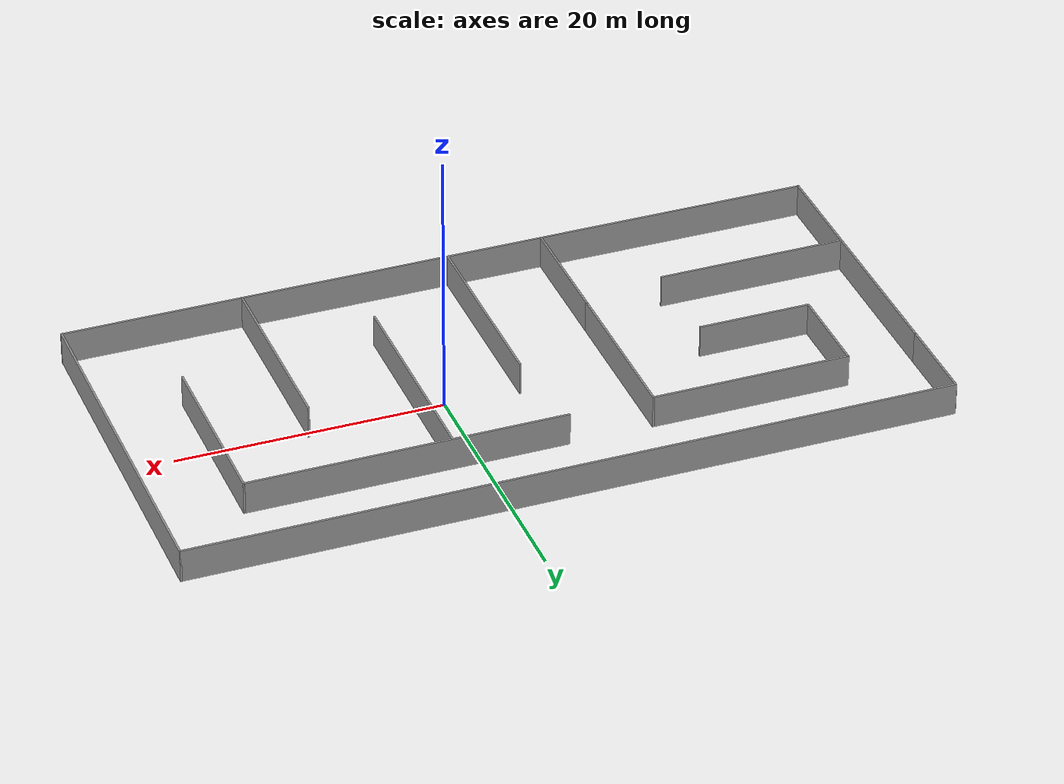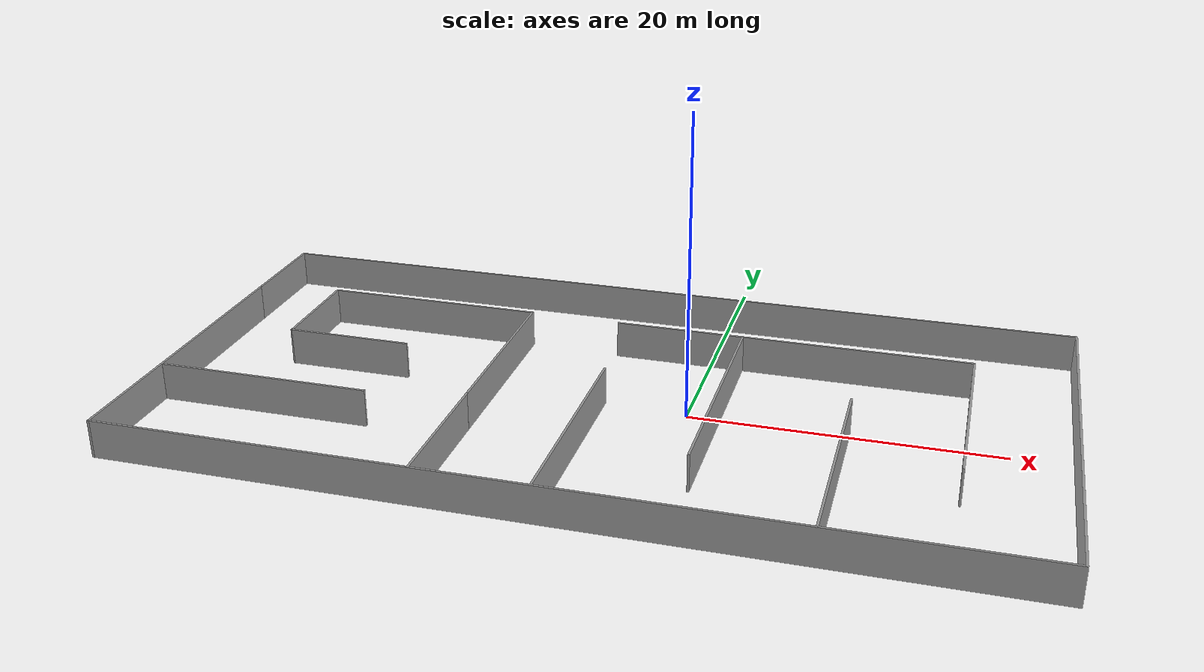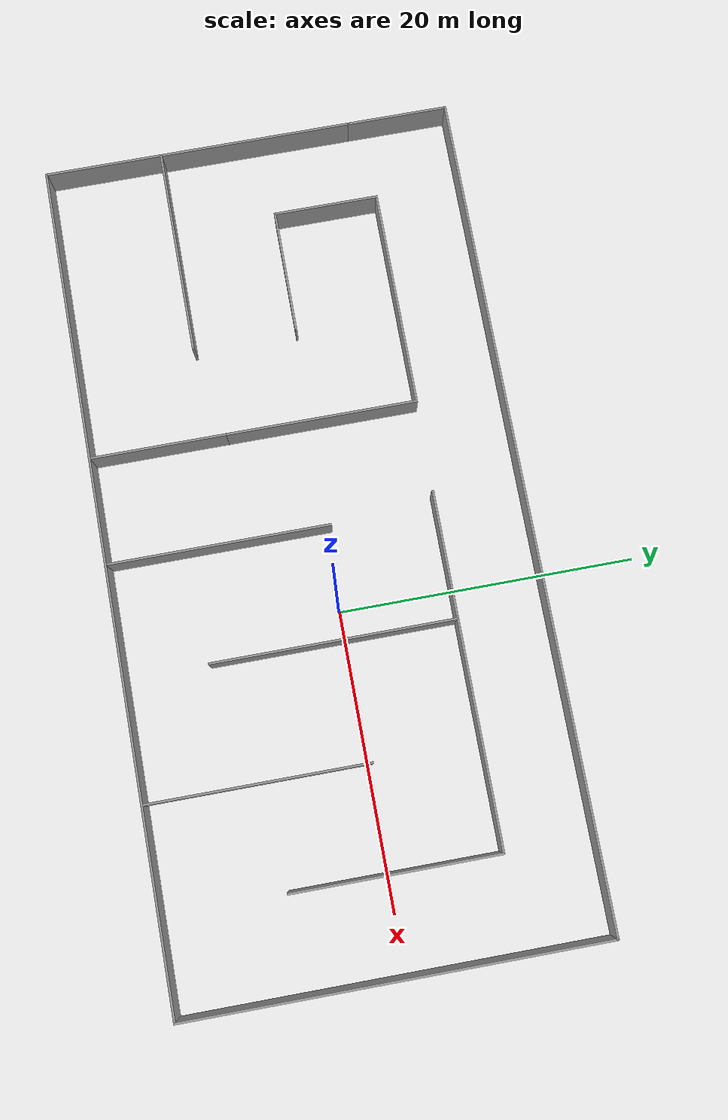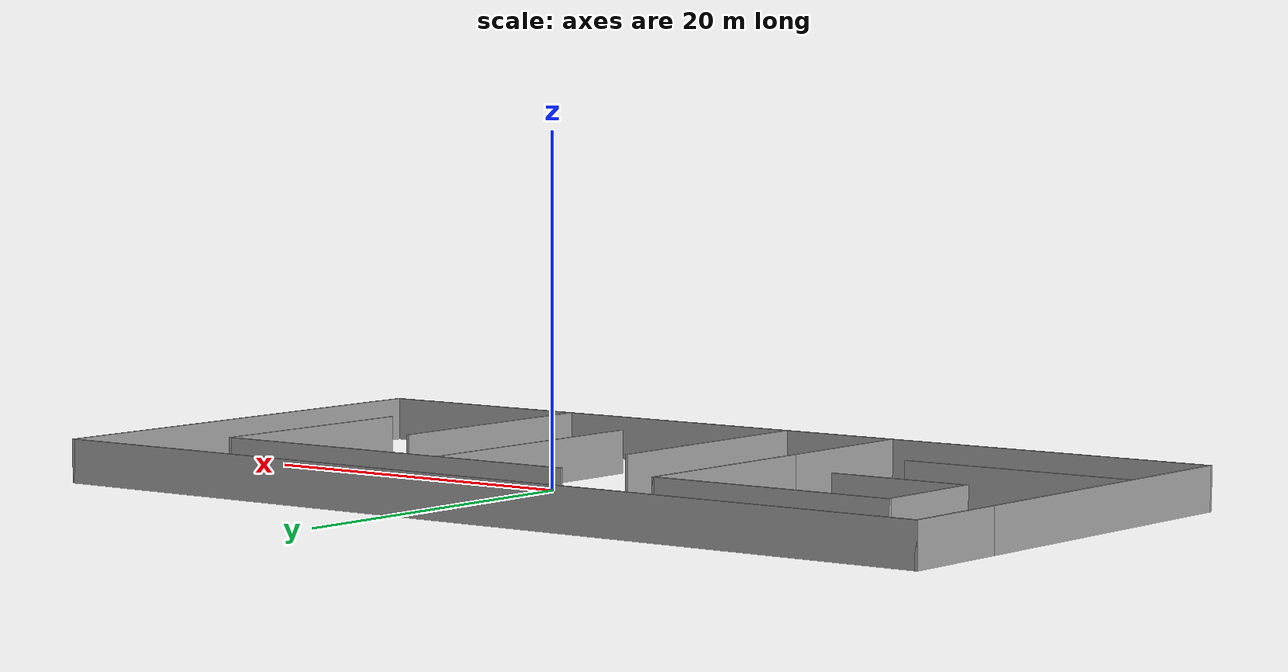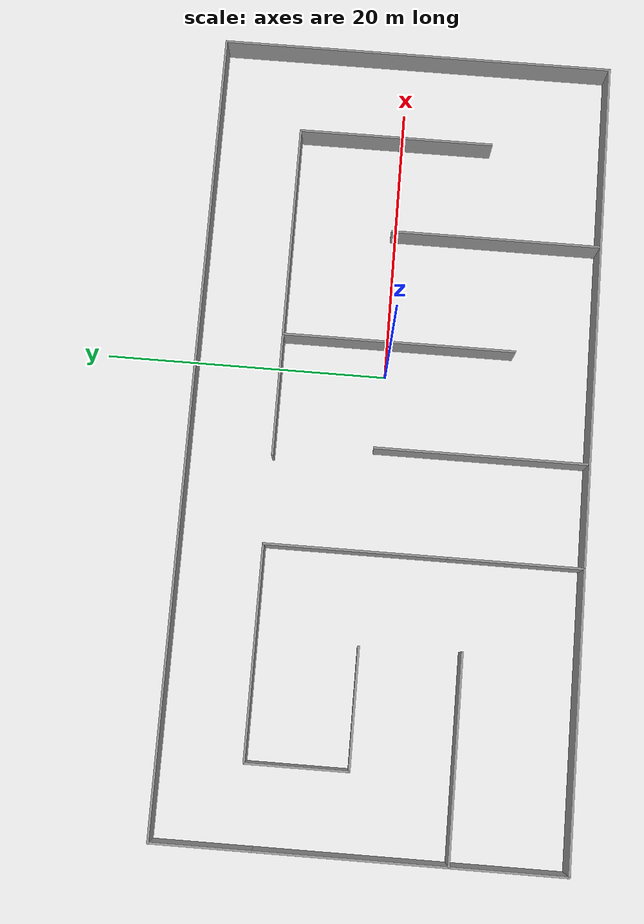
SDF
<?xml version='1.0'?>
<sdf version='1.7'>
  <model name='simple_maze'>
    <pose>-4.78494 -0.558679 0 0 -0 0</pose>
    <link name='Wall_0'>
      <collision name='Wall_0_Collision'>
        <geometry>
          <box>
            <size>7 0.15 2.5</size>
          </box>
        </geometry>
        <pose>0 0 1.25 0 -0 0</pose>
      </collision>
      <visual name='Wall_0_Visual'>
        <pose>0 0 1.25 0 -0 0</pose>
        <geometry>
          <box>
            <size>7 0.15 2.5</size>
          </box>
        </geometry>
        <material>
          <script>
            <uri>file://media/materials/scripts/gazebo.material</uri>
            <name>Gazebo/Grey</name>
          </script>
          <ambient>1 1 1 1</ambient>
        </material>
        <meta>
          <layer>0</layer>
        </meta>
      </visual>
      <pose>-28.55 10.625 0 0 -0 1.5708</pose>
    </link>
    <link name='Wall_1'>
      <collision name='Wall_1_Collision'>
        <geometry>
          <box>
            <size>57.25 0.15 2.5</size>
          </box>
        </geometry>
        <pose>0 0 1.25 0 -0 0</pose>
      </collision>
      <visual name='Wall_1_Visual'>
        <pose>0 0 1.25 0 -0 0</pose>
        <geometry>
          <box>
            <size>57.25 0.15 2.5</size>
          </box>
        </geometry>
        <material>
          <script>
            <uri>file://media/materials/scripts/gazebo.material</uri>
            <name>Gazebo/Grey</name>
          </script>
          <ambient>1 1 1 1</ambient>
        </material>
        <meta>
          <layer>0</layer>
        </meta>
      </visual>
      <pose>0 14.05 0 0 -0 0</pose>
    </link>
    <link name='Wall_11'>
      <collision name='Wall_11_Collision'>
        <geometry>
          <box>
            <size>13.033 0.15 2.5</size>
          </box>
        </geometry>
        <pose>0 0 1.25 0 -0 0</pose>
      </collision>
      <visual name='Wall_11_Visual'>
        <pose>0 0 1.25 0 -0 0</pose>
        <geometry>
          <box>
            <size>13.033 0.15 2.5</size>
          </box>
        </geometry>
        <material>
          <script>
            <uri>file://media/materials/scripts/gazebo.material</uri>
            <name>Gazebo/Grey</name>
          </script>
          <ambient>1 1 1 1</ambient>
        </material>
        <meta>
          <layer>0</layer>
        </meta>
      </visual>
      <pose>-8.03045 1.69364 0 0 -0 1.5708</pose>
    </link>
    <link name='Wall_12'>
      <collision name='Wall_12_Collision'>
        <geometry>
          <box>
            <size>15 0.15 2.5</size>
          </box>
        </geometry>
        <pose>0 0 1.25 0 -0 0</pose>
      </collision>
      <visual name='Wall_12_Visual'>
        <pose>0 0 1.25 0 -0 0</pose>
        <geometry>
          <box>
            <size>15 0.15 2.5</size>
          </box>
        </geometry>
        <material>
          <script>
            <uri>file://media/materials/scripts/gazebo.material</uri>
            <name>Gazebo/Grey</name>
          </script>
          <ambient>1 1 1 1</ambient>
        </material>
        <meta>
          <layer>0</layer>
        </meta>
      </visual>
      <pose>-15.4555 8.13515 0 0 -0 3.14159</pose>
    </link>
    <link name='Wall_13'>
      <collision name='Wall_13_Collision'>
        <geometry>
          <box>
            <size>7.25 0.15 2.5</size>
          </box>
        </geometry>
        <pose>0 0 1.25 0 -0 0</pose>
      </collision>
      <visual name='Wall_13_Visual'>
        <pose>0 0 1.25 0 -0 0</pose>
        <geometry>
          <box>
            <size>7.25 0.15 2.5</size>
          </box>
        </geometry>
        <material>
          <script>
            <uri>file://media/materials/scripts/gazebo.material</uri>
            <name>Gazebo/Grey</name>
          </script>
          <ambient>1 1 1 1</ambient>
        </material>
        <meta>
          <layer>0</layer>
        </meta>
      </visual>
      <pose>-22.8805 4.58515 0 0 -0 -1.5708</pose>
    </link>
    <link name='Wall_14'>
      <collision name='Wall_14_Collision'>
        <geometry>
          <box>
            <size>8.5 0.15 2.5</size>
          </box>
        </geometry>
        <pose>0 0 1.25 0 -0 0</pose>
      </collision>
      <visual name='Wall_14_Visual'>
        <pose>0 0 1.25 0 -0 0</pose>
        <geometry>
          <box>
            <size>8.5 0.15 2.5</size>
          </box>
        </geometry>
        <material>
          <script>
            <uri>file://media/materials/scripts/gazebo.material</uri>
            <name>Gazebo/Grey</name>
          </script>
          <ambient>1 1 1 1</ambient>
        </material>
        <meta>
          <layer>0</layer>
        </meta>
      </visual>
      <pose>-18.7055 1.03515 0 0 -0 0</pose>
    </link>
    <link name='Wall_16'>
      <collision name='Wall_16_Collision'>
        <geometry>
          <box>
            <size>24 0.15 2.5</size>
          </box>
        </geometry>
        <pose>0 0 1.25 0 -0 0</pose>
      </collision>
      <visual name='Wall_16_Visual'>
        <pose>0 0 1.25 0 -0 0</pose>
        <geometry>
          <box>
            <size>24 0.15 2.5</size>
          </box>
        </geometry>
        <material>
          <script>
            <uri>file://media/materials/scripts/gazebo.material</uri>
            <name>Gazebo/Grey</name>
          </script>
          <ambient>1 1 1 1</ambient>
        </material>
        <meta>
          <layer>0</layer>
        </meta>
      </visual>
      <pose>10.1919 8.04908 0 0 -0 0</pose>
    </link>
    <link name='Wall_17'>
      <collision name='Wall_17_Collision'>
        <geometry>
          <box>
            <size>14 0.15 2.5</size>
          </box>
        </geometry>
        <pose>0 0 1.25 0 -0 0</pose>
      </collision>
      <visual name='Wall_17_Visual'>
        <pose>0 0 1.25 0 -0 0</pose>
        <geometry>
          <box>
            <size>14 0.15 2.5</size>
          </box>
        </geometry>
        <material>
          <script>
            <uri>file://media/materials/scripts/gazebo.material</uri>
            <name>Gazebo/Grey</name>
          </script>
          <ambient>1 1 1 1</ambient>
        </material>
        <meta>
          <layer>0</layer>
        </meta>
      </visual>
      <pose>22.1169 1.12409 0 0 -0 -1.5708</pose>
    </link>
    <link name='Wall_19'>
      <collision name='Wall_19_Collision'>
        <geometry>
          <box>
            <size>15 0.15 2.5</size>
          </box>
        </geometry>
        <pose>0 0 1.25 0 -0 0</pose>
      </collision>
      <visual name='Wall_19_Visual'>
        <pose>0 0 1.25 0 -0 0</pose>
        <geometry>
          <box>
            <size>15 0.15 2.5</size>
          </box>
        </geometry>
        <material>
          <script>
            <uri>file://media/materials/scripts/gazebo.material</uri>
            <name>Gazebo/Grey</name>
          </script>
          <ambient>1 1 1 1</ambient>
        </material>
        <meta>
          <layer>0</layer>
        </meta>
      </visual>
      <pose>-0.742476 -6.45162 0 0 -0 -1.5708</pose>
    </link>
    <link name='Wall_2'>
      <collision name='Wall_2_Collision'>
        <geometry>
          <box>
            <size>28.25 0.15 2.5</size>
          </box>
        </geometry>
        <pose>0 0 1.25 0 -0 0</pose>
      </collision>
      <visual name='Wall_2_Visual'>
        <pose>0 0 1.25 0 -0 0</pose>
        <geometry>
          <box>
            <size>28.25 0.15 2.5</size>
          </box>
        </geometry>
        <material>
          <script>
            <uri>file://media/materials/scripts/gazebo.material</uri>
            <name>Gazebo/Grey</name>
          </script>
          <ambient>1 1 1 1</ambient>
        </material>
        <meta>
          <layer>0</layer>
        </meta>
      </visual>
      <pose>28.55 0 0 0 -0 -1.5708</pose>
    </link>
    <link name='Wall_21'>
      <collision name='Wall_21_Collision'>
        <geometry>
          <box>
            <size>16.5 0.15 2.5</size>
          </box>
        </geometry>
        <pose>0 0 1.25 0 -0 0</pose>
      </collision>
      <visual name='Wall_21_Visual'>
        <pose>0 0 1.25 0 -0 0</pose>
        <geometry>
          <box>
            <size>16.5 0.15 2.5</size>
          </box>
        </geometry>
        <material>
          <script>
            <uri>file://media/materials/scripts/gazebo.material</uri>
            <name>Gazebo/Grey</name>
          </script>
          <ambient>1 1 1 1</ambient>
        </material>
        <meta>
          <layer>0</layer>
        </meta>
      </visual>
      <pose>6.89929 -0.196672 0 0 -0 -1.5708</pose>
    </link>
    <link name='Wall_23'>
      <collision name='Wall_23_Collision'>
        <geometry>
          <box>
            <size>15 0.15 2.5</size>
          </box>
        </geometry>
        <pose>0 0 1.25 0 -0 0</pose>
      </collision>
      <visual name='Wall_23_Visual'>
        <pose>0 0 1.25 0 -0 0</pose>
        <geometry>
          <box>
            <size>15 0.15 2.5</size>
          </box>
        </geometry>
        <material>
          <script>
            <uri>file://media/materials/scripts/gazebo.material</uri>
            <name>Gazebo/Grey</name>
          </script>
          <ambient>1 1 1 1</ambient>
        </material>
        <meta>
          <layer>0</layer>
        </meta>
      </visual>
      <pose>15.0363 -6.53136 0 0 -0 1.5708</pose>
    </link>
    <link name='Wall_3'>
      <collision name='Wall_3_Collision'>
        <geometry>
          <box>
            <size>57.25 0.15 2.5</size>
          </box>
        </geometry>
        <pose>0 0 1.25 0 -0 0</pose>
      </collision>
      <visual name='Wall_3_Visual'>
        <pose>0 0 1.25 0 -0 0</pose>
        <geometry>
          <box>
            <size>57.25 0.15 2.5</size>
          </box>
        </geometry>
        <material>
          <script>
            <uri>file://media/materials/scripts/gazebo.material</uri>
            <name>Gazebo/Grey</name>
          </script>
          <ambient>1 1 1 1</ambient>
        </material>
        <meta>
          <layer>0</layer>
        </meta>
      </visual>
      <pose>0 -14.05 0 0 -0 3.14159</pose>
    </link>
    <link name='Wall_4'>
      <collision name='Wall_4_Collision'>
        <geometry>
          <box>
            <size>21.4 0.15 2.5</size>
          </box>
        </geometry>
        <pose>0 0 1.25 0 -0 0</pose>
      </collision>
      <visual name='Wall_4_Visual'>
        <pose>0 0 1.25 0 -0 0</pose>
        <geometry>
          <box>
            <size>21.4 0.15 2.5</size>
          </box>
        </geometry>
        <material>
          <script>
            <uri>file://media/materials/scripts/gazebo.material</uri>
            <name>Gazebo/Grey</name>
          </script>
          <ambient>1 1 1 1</ambient>
        </material>
        <meta>
          <layer>0</layer>
        </meta>
      </visual>
      <pose>-28.55 -3.425 0 0 -0 1.5708</pose>
    </link>
    <link name='Wall_7'>
      <collision name='Wall_7_Collision'>
        <geometry>
          <box>
            <size>14.25 0.15 2.5</size>
          </box>
        </geometry>
        <pose>0 0 1.25 0 -0 0</pose>
      </collision>
      <visual name='Wall_7_Visual'>
        <pose>0 0 1.25 0 -0 0</pose>
        <geometry>
          <box>
            <size>14.25 0.15 2.5</size>
          </box>
        </geometry>
        <material>
          <script>
            <uri>file://media/materials/scripts/gazebo.material</uri>
            <name>Gazebo/Grey</name>
          </script>
          <ambient>1 1 1 1</ambient>
        </material>
        <meta>
          <layer>0</layer>
        </meta>
      </visual>
      <pose>-21.4292 -6.03157 0 0 -0 0</pose>
    </link>
    <link name='Wall_9'>
      <collision name='Wall_9_Collision'>
        <geometry>
          <box>
            <size>9.5 0.15 2.5</size>
          </box>
        </geometry>
        <pose>0 0 1.25 0 -0 0</pose>
      </collision>
      <visual name='Wall_9_Visual'>
        <pose>0 0 1.25 0 -0 0</pose>
        <geometry>
          <box>
            <size>9.5 0.15 2.5</size>
          </box>
        </geometry>
        <material>
          <script>
            <uri>file://media/materials/scripts/gazebo.material</uri>
            <name>Gazebo/Grey</name>
          </script>
          <ambient>1 1 1 1</ambient>
        </material>
        <meta>
          <layer>0</layer>
        </meta>
      </visual>
      <pose>-8.03045 -9.35212 0 0 -0 1.5708</pose>
    </link>
    <static>1</static>
  </model>
</sdf>
